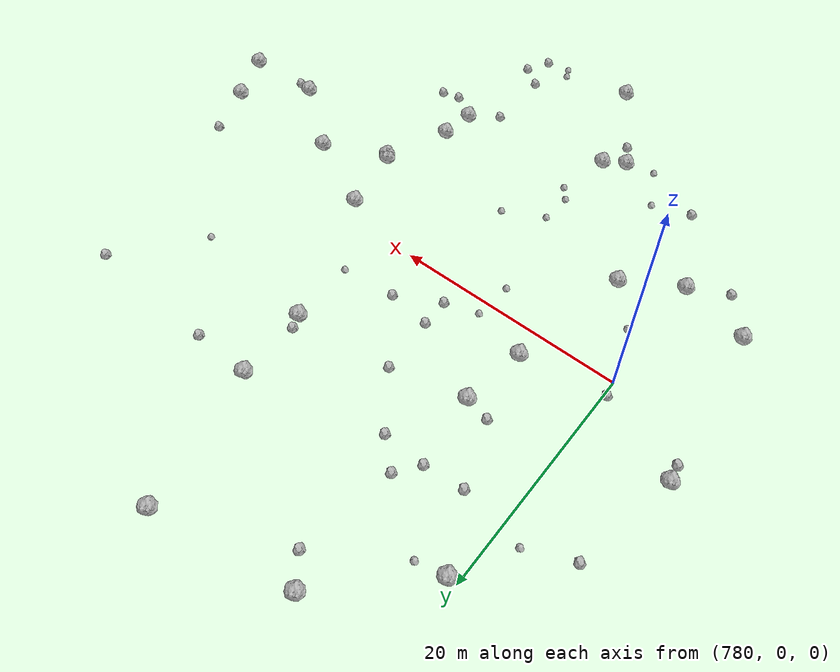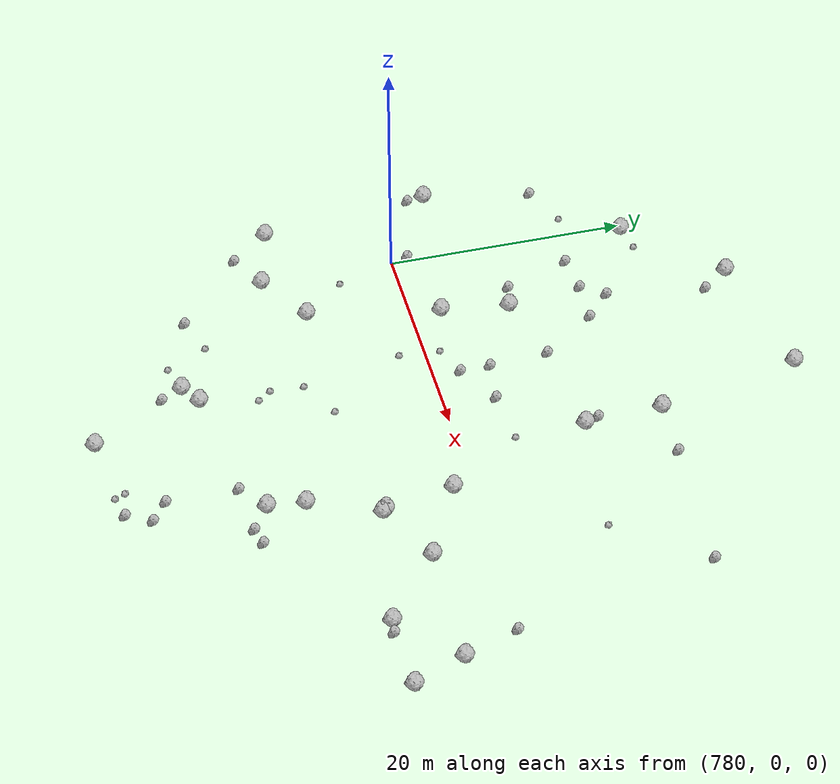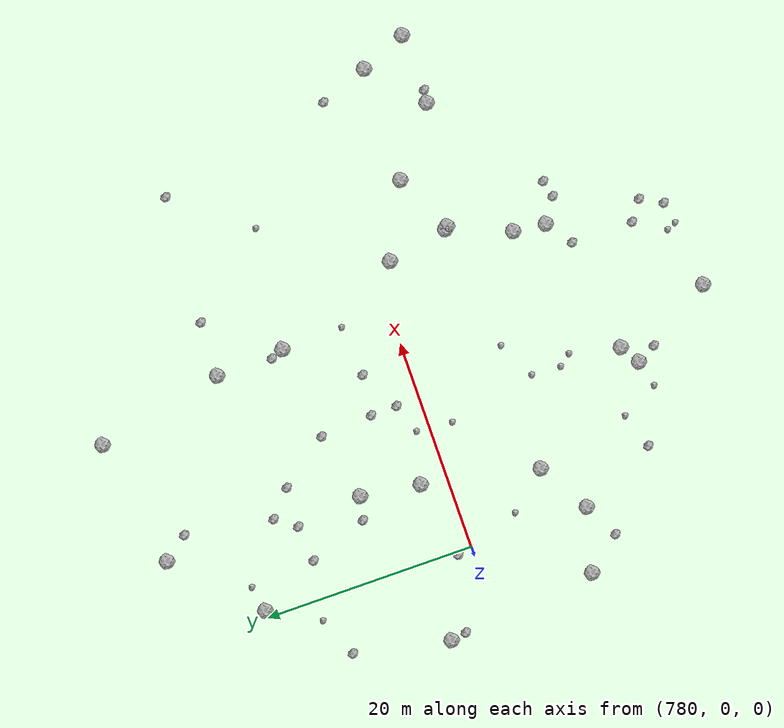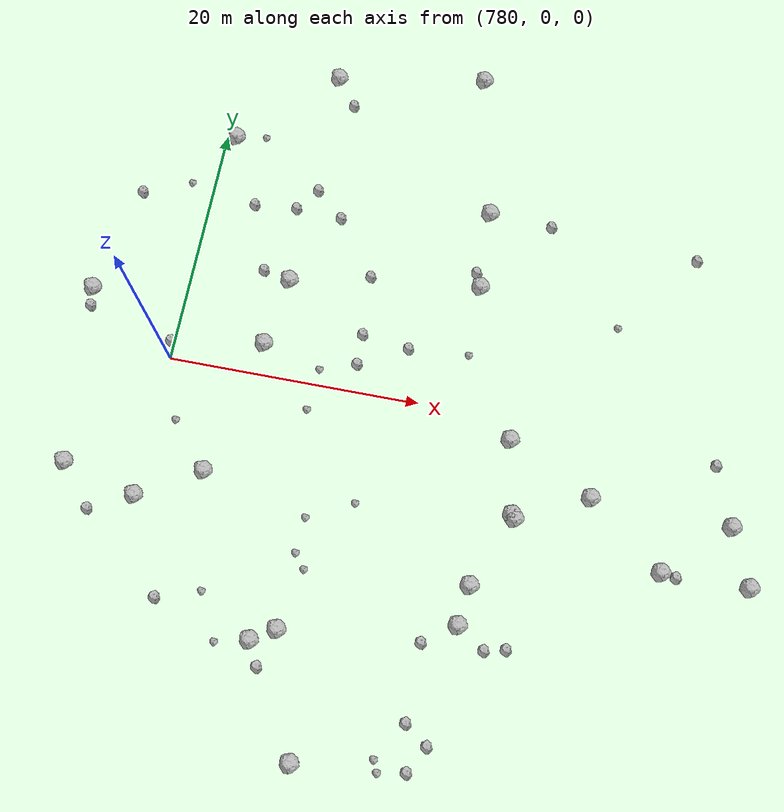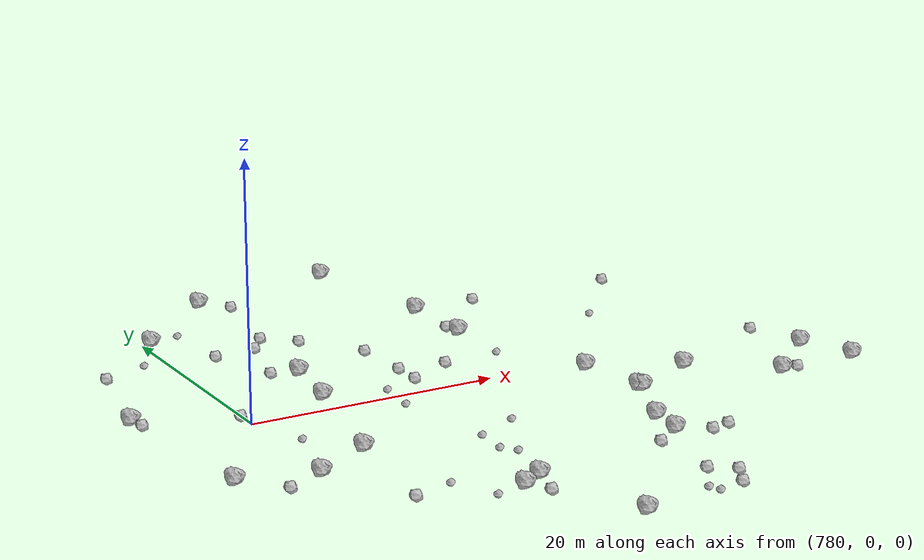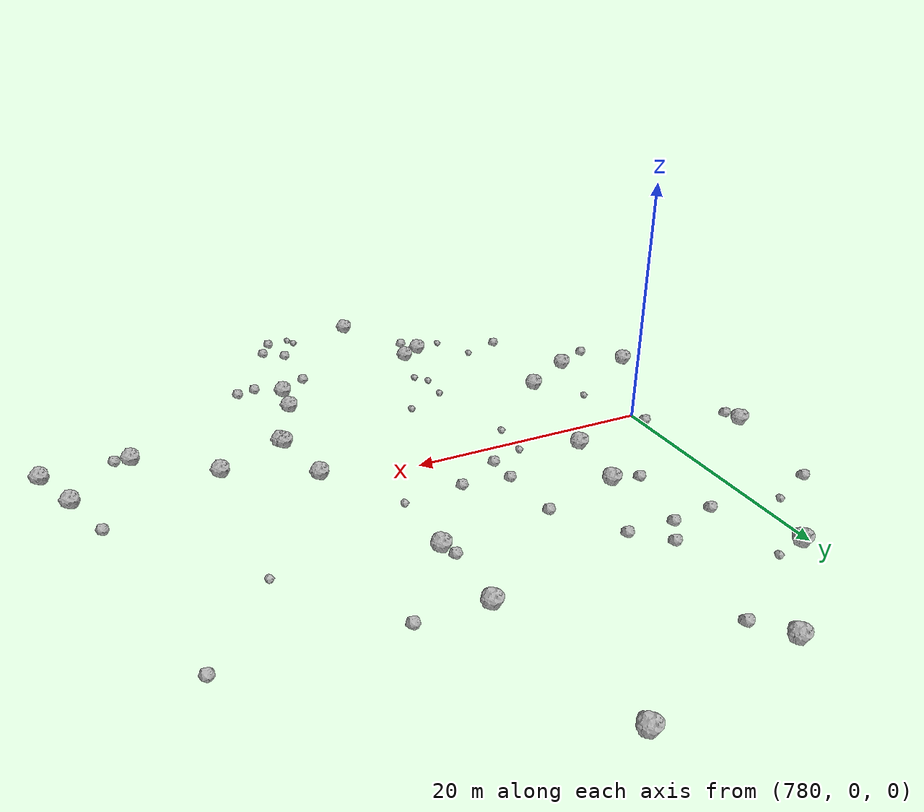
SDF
<sdf version="1.6">
 <world name="default">
  <include><uri>model://sun</uri></include>
  <model name="rock1_20_4">
   <include><uri>model://rock1</uri><pose>772.5210944339043 4.594857503439393 0.5 0 0 0</pose></include>
  </model>
  <model name="rock1_20_5">
   <include><uri>model://rock1</uri><pose>787.931612689047 8.1948794345315 0.5 0 0 0</pose></include>
  </model>
  <model name="rock1_20_6">
   <include><uri>model://rock1</uri><pose>802.8615040472785 17.0323115207552 0.5 0 0 0</pose></include>
  </model>
  <model name="rock1_20_7">
   <include><uri>model://rock1</uri><pose>792.9848377375578 -19.19430963941083 0.5 0 0 0</pose></include>
  </model>
  <model name="rock1_20_8">
   <include><uri>model://rock1</uri><pose>774.126327995125 -9.77579073886568 0.5 0 0 0</pose></include>
  </model>
  <model name="rock1_20_9">
   <include><uri>model://rock1</uri><pose>820.3463793229871 -9.674236392908675 0.5 0 0 0</pose></include>
  </model>
  <model name="rock1_20_10">
   <include><uri>model://rock1</uri><pose>803.1773392008954 10.498440475568131 0.5 0 0 0</pose></include>
  </model>
  <model name="rock1_20_11">
   <include><uri>model://rock1</uri><pose>780.0520213364882 -11.323344977066277 0.5 0 0 0</pose></include>
  </model>
  <model name="rock1_20_12">
   <include><uri>model://rock1</uri><pose>800.3141660908708 29.1687059183784 0.5 0 0 0</pose></include>
  </model>
  <model name="rock1_20_13">
   <include><uri>model://rock1</uri><pose>806.0906663071821 -16.392947084678617 0.5 0 0 0</pose></include>
  </model>
  <model name="rock1_20_14">
   <include><uri>model://rock1</uri><pose>807.596730391683 -1.621579402616259 0.5 0 0 0</pose></include>
  </model>
  <model name="rock1_20_15">
   <include><uri>model://rock1</uri><pose>827.0085842306985 -9.589117359138392 0.5 0 0 0</pose></include>
  </model>
  <model name="rock1_20_16">
   <include><uri>model://rock1</uri><pose>780.8201935142348 19.996174596959342 0.5 0 0 0</pose></include>
  </model>
  <model name="rock1_20_17">
   <include><uri>model://rock1</uri><pose>808.6842298834603 -7.412060132206964 0.5 0 0 0</pose></include>
  </model>
  <model name="rock1_20_18">
   <include><uri>model://rock1</uri><pose>784.82777562447 -8.470453425583226 0.5 0 0 0</pose></include>
  </model>
  <model name="rock1_20_19">
   <include><uri>model://rock1</uri><pose>795.9686719030697 -28.31523127124388 0.5 0 0 0</pose></include>
  </model>
  <model name="rock1_20_20">
   <include><uri>model://rock1</uri><pose>814.3780725640064 -5.013095627449328 0.5 0 0 0</pose></include>
  </model>
  <model name="rock1_20_21">
   <include><uri>model://rock1</uri><pose>806.4437467206112 -13.314072239949368 0.5 0 0 0</pose></include>
  </model>
  <model name="rock1_20_22">
   <include><uri>model://rock1</uri><pose>825.2178631855359 -5.236031514504354 0.5 0 0 0</pose></include>
  </model>
  <model name="rock1_20_23">
   <include><uri>model://rock1</uri><pose>788.140587952698 27.096655635784387 0.5 0 0 0</pose></include>
  </model>
  <model name="rock1_20_24">
   <include><uri>model://rock1</uri><pose>787.1060450892292 2.524233287000939 0.5 0 0 0</pose></include>
  </model>
  <model name="rock1_20_25">
   <include><uri>model://rock1</uri><pose>808.897090653965 -7.671970351173812 0.5 0 0 0</pose></include>
  </model>
  <model name="rock1_20_26">
   <include><uri>model://rock1</uri><pose>791.1707418171784 -20.328200191379526 0.5 0 0 0</pose></include>
  </model>
  <model name="rock2_20_0">
   <include><uri>model://rock2</uri><pose>794.6869764534522 2.244701438088512 0.3 0 0 0</pose></include>
  </model>
  <model name="rock2_20_1">
   <include><uri>model://rock2</uri><pose>783.4809087996907 -18.59553044467145 0.3 0 0 0</pose></include>
  </model>
  <model name="rock2_20_2">
   <include><uri>model://rock2</uri><pose>794.3098927903479 9.7536396477824 0.3 0 0 0</pose></include>
  </model>
  <model name="rock2_20_3">
   <include><uri>model://rock2</uri><pose>823.5263031400154 -0.6576023931928674 0.3 0 0 0</pose></include>
  </model>
  <model name="rock2_20_4">
   <include><uri>model://rock2</uri><pose>772.7125142740747 3.1231349570048295 0.3 0 0 0</pose></include>
  </model>
  <model name="rock2_20_5">
   <include><uri>model://rock2</uri><pose>776.751622707024 -13.006815238442687 0.3 0 0 0</pose></include>
  </model>
  <model name="rock2_20_6">
   <include><uri>model://rock2</uri><pose>805.3956033922409 -25.33492053009713 0.3 0 0 0</pose></include>
  </model>
  <model name="rock2_20_7">
   <include><uri>model://rock2</uri><pose>820.052675337045 16.07909265168375 0.3 0 0 0</pose></include>
  </model>
  <model name="rock2_20_8">
   <include><uri>model://rock2</uri><pose>798.449233753717 4.267522229922079 0.3 0 0 0</pose></include>
  </model>
  <model name="rock2_20_9">
   <include><uri>model://rock2</uri><pose>787.1214280264668 14.552554477397216 0.3 0 0 0</pose></include>
  </model>
  <model name="rock2_20_10">
   <include><uri>model://rock2</uri><pose>779.7625824670163 1.381357705232162 0.3 0 0 0</pose></include>
  </model>
  <model name="rock2_20_11">
   <include><uri>model://rock2</uri><pose>774.3374849287297 13.641494745307298 0.3 0 0 0</pose></include>
  </model>
  <model name="rock2_20_12">
   <include><uri>model://rock2</uri><pose>783.6761623503435 14.248557644298657 0.3 0 0 0</pose></include>
  </model>
  <model name="rock2_20_13">
   <include><uri>model://rock2</uri><pose>788.5413493409358 16.488675362513078 0.3 0 0 0</pose></include>
  </model>
  <model name="rock2_20_14">
   <include><uri>model://rock2</uri><pose>808.280448513631 -17.856145354812647 0.3 0 0 0</pose></include>
  </model>
  <model name="rock2_20_15">
   <include><uri>model://rock2</uri><pose>794.6455290793126 4.763961297440709 0.3 0 0 0</pose></include>
  </model>
  <model name="rock2_20_16">
   <include><uri>model://rock2</uri><pose>790.8886284168676 14.372288908278904 0.3 0 0 0</pose></include>
  </model>
  <model name="rock2_20_17">
   <include><uri>model://rock2</uri><pose>807.9997267423875 16.83966515841889 0.3 0 0 0</pose></include>
  </model>
  <model name="rock2_20_18">
   <include><uri>model://rock2</uri><pose>792.0993710819074 -22.136343584353362 0.3 0 0 0</pose></include>
  </model>
  <model name="rock2_20_19">
   <include><uri>model://rock2</uri><pose>785.700103276005 8.696173096082887 0.3 0 0 0</pose></include>
  </model>
  <model name="rock2_20_20">
   <include><uri>model://rock2</uri><pose>789.8745505726706 24.78724809829481 0.3 0 0 0</pose></include>
  </model>
  <model name="rock2_20_21">
   <include><uri>model://rock2</uri><pose>802.6566107220297 11.701615539596602 0.3 0 0 0</pose></include>
  </model>
  <model name="rock2_20_22">
   <include><uri>model://rock2</uri><pose>804.2941531920566 -27.38235715988014 0.3 0 0 0</pose></include>
  </model>
  <model name="rock2_20_23">
   <include><uri>model://rock2</uri><pose>803.6012296009204 -24.014733079359978 0.3 0 0 0</pose></include>
  </model>
  <model name="rock2_20_24">
   <include><uri>model://rock2</uri><pose>803.6289475250372 -18.142643628466878 0.3 0 0 0</pose></include>
  </model>
  <model name="rock2_20_25">
   <include><uri>model://rock2</uri><pose>809.8851355411939 -17.482470971979367 0.3 0 0 0</pose></include>
  </model>
  <model name="rock2_20_26">
   <include><uri>model://rock2</uri><pose>821.5253947502745 -9.8432575811966 0.3 0 0 0</pose></include>
  </model>
  <model name="rock3_20_0">
   <include><uri>model://rock3</uri><pose>796.7521889754084 -8.778874152233438 0.2 0 0 0</pose></include>
  </model>
  <model name="rock3_20_1">
   <include><uri>model://rock3</uri><pose>786.7992872447884 -17.504894064438375 0.2 0 0 0</pose></include>
  </model>
  <model name="rock3_20_2">
   <include><uri>model://rock3</uri><pose>791.8327536799674 1.2425550242619678 0.2 0 0 0</pose></include>
  </model>
  <model name="rock3_20_3">
   <include><uri>model://rock3</uri><pose>783.210263724899 20.45250786741299 0.2 0 0 0</pose></include>
  </model>
  <model name="rock3_20_4">
   <include><uri>model://rock3</uri><pose>793.9684130673987 -14.47943870681083 0.2 0 0 0</pose></include>
  </model>
  <model name="rock3_20_5">
   <include><uri>model://rock3</uri><pose>781.6787501256546 -4.902680213698552 0.2 0 0 0</pose></include>
  </model>
  <model name="rock3_20_6">
   <include><uri>model://rock3</uri><pose>793.0925362671449 -13.371892430069675 0.2 0 0 0</pose></include>
  </model>
  <model name="rock3_20_7">
   <include><uri>model://rock3</uri><pose>814.5219613408676 9.107988961173035 0.2 0 0 0</pose></include>
  </model>
  <model name="rock3_20_8">
   <include><uri>model://rock3</uri><pose>801.804706972139 -26.934071851776427 0.2 0 0 0</pose></include>
  </model>
  <model name="rock3_20_9">
   <include><uri>model://rock3</uri><pose>788.5670641290309 -20.970241051304846 0.2 0 0 0</pose></include>
  </model>
  <model name="rock3_20_10">
   <include><uri>model://rock3</uri><pose>802.1899132040714 -27.79295832713663 0.2 0 0 0</pose></include>
  </model>
  <model name="rock3_20_11">
   <include><uri>model://rock3</uri><pose>793.2514159866118 -10.584283449008232 0.2 0 0 0</pose></include>
  </model>
  <model name="rock3_20_12">
   <include><uri>model://rock3</uri><pose>778.1112116052165 15.236500507794723 0.2 0 0 0</pose></include>
  </model>
  <model name="rock3_20_13">
   <include><uri>model://rock3</uri><pose>791.5501330675843 -2.1710327533268448 0.2 0 0 0</pose></include>
  </model>
  <model name="rock3_20_14">
   <include><uri>model://rock3</uri><pose>803.2262771649633 4.6278736128464 0.2 0 0 0</pose></include>
  </model>
 </world>
</sdf>
